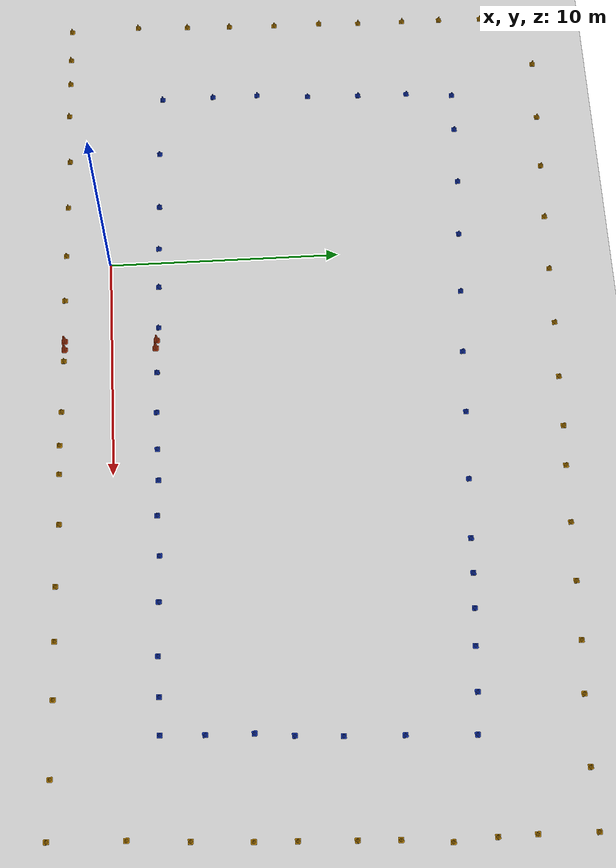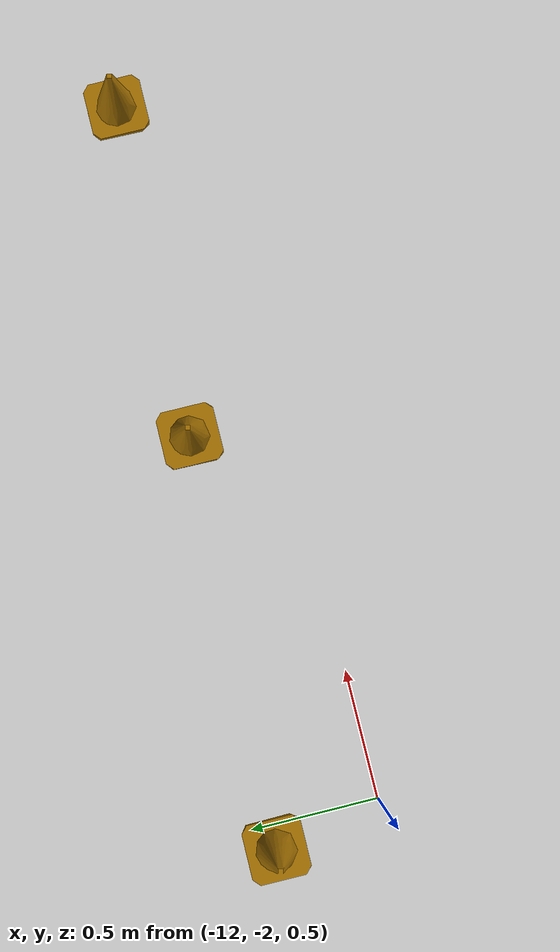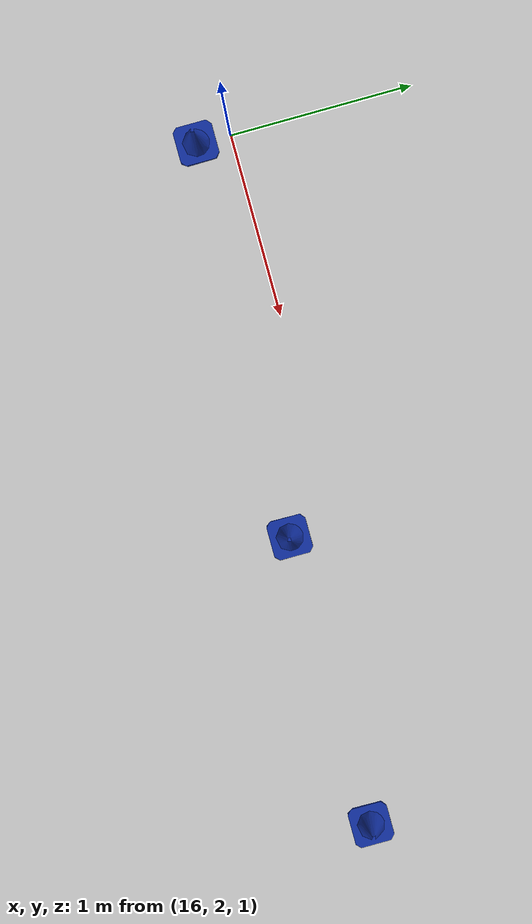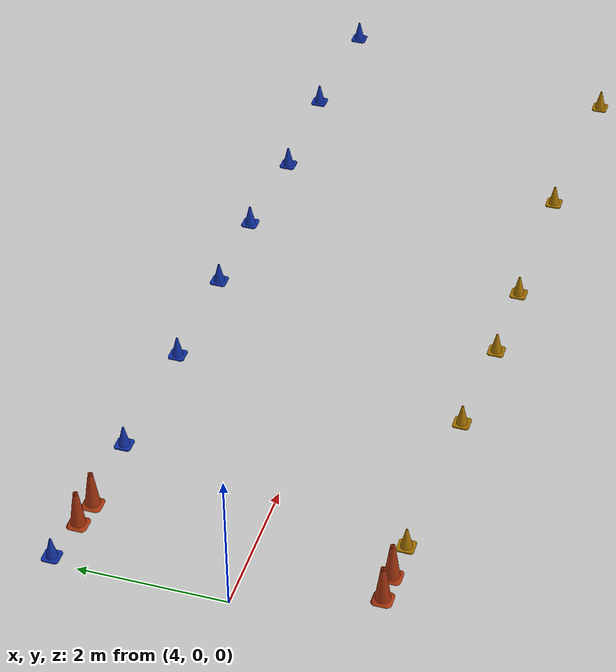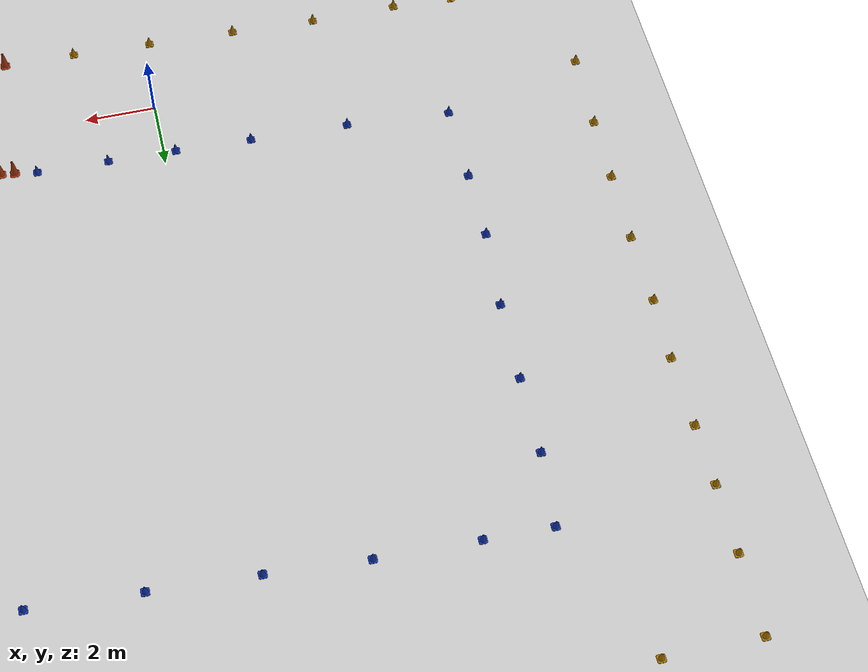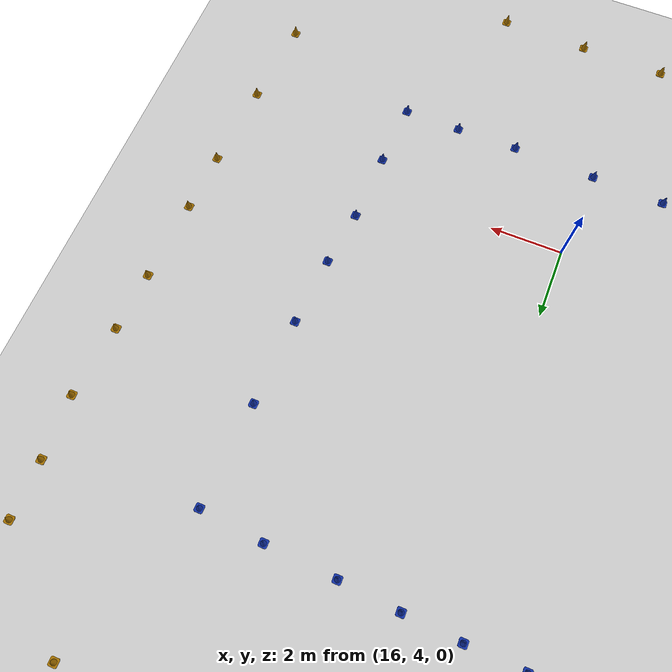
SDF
<sdf version='1.6'>
  <world name='rectangle'>
    <gui fullscreen='0'>
      <camera name='user_camera'>
        <pose frame=''>-40 40 20 0 0.667643 -1</pose>
        <view_controller>orbit</view_controller>
        <projection_type>perspective</projection_type>
      </camera>
    </gui>

    <!-- WORLD SETTINGS -->
    <scene>
      <ambient>1.0 1.0 1.0 1.0</ambient>
      <shadows>false</shadows>
    </scene>

    <spherical_coordinates>
      <heading_deg>180</heading_deg>

      <!-- Appleton Tower coordinates -->
      <latitude_deg>-27.69056</latitude_deg>
      <longitude_deg>152.65461</longitude_deg>
    </spherical_coordinates>

    <light name='sun' type='directional'>
      <cast_shadows>1</cast_shadows>
      <pose frame=''>0 0 10 0 -0 0</pose>
      <diffuse>0.8 0.8 0.8 1</diffuse>
      <specular>0.1 0.1 0.1 1</specular>
      <attenuation>
        <range>1000</range>
        <constant>0.9</constant>
        <linear>0.01</linear>
        <quadratic>0.001</quadratic>
      </attenuation>
      <direction>-0.5 0.5 -1</direction>
    </light>

    <!-- MODELS -->
    <include>
      <uri>model://ground_plane</uri>
      <pose>0.0 0.0 0.0 0 0 0</pose>
    </include>

    <include>
      <uri>model://rectangle</uri>
      <pose>0 0 0.5 0 0 0</pose>
    </include>

  </world>
</sdf>

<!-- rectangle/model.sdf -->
<sdf version='1.6'>
  <model name='track'>

    <include>
      <pose>5.6544677523948295 1.956587785484744 0.15 0 0 0</pose>
      <uri>model://blue_cone</uri>
      <name>blue_cone_0</name>

      <covariance x="0.000196" y="0.000196" xy="0.0"/>

    </include>

    <include>
      <pose>7.525817701700996 1.9079663772485465 0.15 0 0 0</pose>
      <uri>model://blue_cone</uri>
      <name>blue_cone_1</name>

      <covariance x="0.000196" y="0.000196" xy="0.0"/>

    </include>

    <include>
      <pose>9.21198625619503 1.9003050374653905 0.15 0 0 0</pose>
      <uri>model://blue_cone</uri>
      <name>blue_cone_2</name>

      <covariance x="0.000196" y="0.000196" xy="0.0"/>

    </include>

    <include>
      <pose>10.617088060135671 1.913222493246845 0.15 0 0 0</pose>
      <uri>model://blue_cone</uri>
      <name>blue_cone_3</name>

      <covariance x="0.000196" y="0.000196" xy="0.0"/>

    </include>

    <include>
      <pose>12.184920875310338 1.8323518996479609 0.15 0 0 0</pose>
      <uri>model://blue_cone</uri>
      <name>blue_cone_4</name>

      <covariance x="0.000196" y="0.000196" xy="0.0"/>

    </include>

    <include>
      <pose>13.947094834501923 1.8826497326155731 0.15 0 0 0</pose>
      <uri>model://blue_cone</uri>
      <name>blue_cone_5</name>

      <covariance x="0.000196" y="0.000196" xy="0.0"/>

    </include>

    <include>
      <pose>15.907212903585409 1.807003889790672 0.15 0 0 0</pose>
      <uri>model://blue_cone</uri>
      <name>blue_cone_6</name>

      <covariance x="0.000196" y="0.000196" xy="0.0"/>

    </include>

    <include>
      <pose>18.170708496990883 1.7257733434104747 0.15 0 0 0</pose>
      <uri>model://blue_cone</uri>
      <name>blue_cone_7</name>

      <covariance x="0.000196" y="0.000196" xy="0.0"/>

    </include>

    <include>
      <pose>19.84144160352861 1.7360355929489475 0.15 0 0 0</pose>
      <uri>model://blue_cone</uri>
      <name>blue_cone_8</name>

      <covariance x="0.000196" y="0.000196" xy="0.0"/>

    </include>

    <include>
      <pose>21.384094120388863 1.7230703824449007 0.15 0 0 0</pose>
      <uri>model://blue_cone</uri>
      <name>blue_cone_9</name>

      <covariance x="0.000196" y="0.000196" xy="0.0"/>

    </include>

    <include>
      <pose>21.509325371907494 5.422236654574587 0.15 0 0 0</pose>
      <uri>model://blue_cone</uri>
      <name>blue_cone_10</name>

      <covariance x="0.000196" y="0.000196" xy="0.0"/>

    </include>

    <include>
      <pose>21.68839458713218 6.984193992240153 0.15 0 0 0</pose>
      <uri>model://blue_cone</uri>
      <name>blue_cone_11</name>

      <covariance x="0.000196" y="0.000196" xy="0.0"/>

    </include>

    <include>
      <pose>21.807527693654627 8.889241096852942 0.15 0 0 0</pose>
      <uri>model://blue_cone</uri>
      <name>blue_cone_12</name>

      <covariance x="0.000196" y="0.000196" xy="0.0"/>

    </include>

    <include>
      <pose>21.901153531652877 11.29087340598122 0.15 0 0 0</pose>
      <uri>model://blue_cone</uri>
      <name>blue_cone_13</name>

      <covariance x="0.000196" y="0.000196" xy="0.0"/>

    </include>

    <include>
      <pose>22.03834409050067 14.10471292986273 0.15 0 0 0</pose>
      <uri>model://blue_cone</uri>
      <name>blue_cone_14</name>

      <covariance x="0.000196" y="0.000196" xy="0.0"/>

    </include>

    <include>
      <pose>20.32563900601358 14.261560834433398 0.15 0 0 0</pose>
      <uri>model://blue_cone</uri>
      <name>blue_cone_15</name>

      <covariance x="0.000196" y="0.000196" xy="0.0"/>

    </include>

    <include>
      <pose>18.447260568554672 14.352890306578011 0.15 0 0 0</pose>
      <uri>model://blue_cone</uri>
      <name>blue_cone_16</name>

      <covariance x="0.000196" y="0.000196" xy="0.0"/>

    </include>

    <include>
      <pose>16.865897946294062 14.463976210033453 0.15 0 0 0</pose>
      <uri>model://blue_cone</uri>
      <name>blue_cone_17</name>

      <covariance x="0.000196" y="0.000196" xy="0.0"/>

    </include>

    <include>
      <pose>15.369213145973408 14.541409632513096 0.15 0 0 0</pose>
      <uri>model://blue_cone</uri>
      <name>blue_cone_18</name>

      <covariance x="0.000196" y="0.000196" xy="0.0"/>

    </include>

    <include>
      <pose>13.870837450218747 14.58203862223499 0.15 0 0 0</pose>
      <uri>model://blue_cone</uri>
      <name>blue_cone_19</name>

      <covariance x="0.000196" y="0.000196" xy="0.0"/>

    </include>

    <include>
      <pose>11.258902569011518 14.735940379467888 0.15 0 0 0</pose>
      <uri>model://blue_cone</uri>
      <name>blue_cone_20</name>

      <covariance x="0.000196" y="0.000196" xy="0.0"/>

    </include>

    <include>
      <pose>8.206183192670238 14.888926659353276 0.15 0 0 0</pose>
      <uri>model://blue_cone</uri>
      <name>blue_cone_21</name>

      <covariance x="0.000196" y="0.000196" xy="0.0"/>

    </include>

    <include>
      <pose>5.384246617898095 15.002328737958663 0.15 0 0 0</pose>
      <uri>model://blue_cone</uri>
      <name>blue_cone_22</name>

      <covariance x="0.000196" y="0.000196" xy="0.0"/>

    </include>

    <include>
      <pose>2.47032931748818 15.172722670488898 0.15 0 0 0</pose>
      <uri>model://blue_cone</uri>
      <name>blue_cone_23</name>

      <covariance x="0.000196" y="0.000196" xy="0.0"/>

    </include>

    <include>
      <pose>-0.3674987281225539 15.340883870727527 0.15 0 0 0</pose>
      <uri>model://blue_cone</uri>
      <name>blue_cone_24</name>

      <covariance x="0.000196" y="0.000196" xy="0.0"/>

    </include>

    <include>
      <pose>-3.050931886039049 15.527652834938214 0.15 0 0 0</pose>
      <uri>model://blue_cone</uri>
      <name>blue_cone_25</name>

      <covariance x="0.000196" y="0.000196" xy="0.0"/>

    </include>

    <include>
      <pose>-5.783423687397845 15.610676658747948 0.15 0 0 0</pose>
      <uri>model://blue_cone</uri>
      <name>blue_cone_26</name>

      <covariance x="0.000196" y="0.000196" xy="0.0"/>

    </include>

    <include>
      <pose>-7.614621987631413 15.649977881367494 0.15 0 0 0</pose>
      <uri>model://blue_cone</uri>
      <name>blue_cone_27</name>

      <covariance x="0.000196" y="0.000196" xy="0.0"/>

    </include>

    <include>
      <pose>-7.799342834447888 13.589114571444677 0.15 0 0 0</pose>
      <uri>model://blue_cone</uri>
      <name>blue_cone_28</name>

      <covariance x="0.000196" y="0.000196" xy="0.0"/>

    </include>

    <include>
      <pose>-7.841127751370941 11.389636685416614 0.15 0 0 0</pose>
      <uri>model://blue_cone</uri>
      <name>blue_cone_29</name>

      <covariance x="0.000196" y="0.000196" xy="0.0"/>

    </include>

    <include>
      <pose>-7.913544349947951 9.09542920199291 0.15 0 0 0</pose>
      <uri>model://blue_cone</uri>
      <name>blue_cone_30</name>

      <covariance x="0.000196" y="0.000196" xy="0.0"/>

    </include>

    <include>
      <pose>-8.099408899209875 6.810534282196548 0.15 0 0 0</pose>
      <uri>model://blue_cone</uri>
      <name>blue_cone_31</name>

      <covariance x="0.000196" y="0.000196" xy="0.0"/>

    </include>

    <include>
      <pose>-8.111414334708572 4.793234068710441 0.15 0 0 0</pose>
      <uri>model://blue_cone</uri>
      <name>blue_cone_32</name>

      <covariance x="0.000196" y="0.000196" xy="0.0"/>

    </include>

    <include>
      <pose>-8.100235954391684 2.513922168418352 0.15 0 0 0</pose>
      <uri>model://blue_cone</uri>
      <name>blue_cone_33</name>

      <covariance x="0.000199625" y="0.000199625" xy="0.0"/>

    </include>

    <include>
      <pose>-5.2014451067354655 2.3120258595638803 0.15 0 0 0</pose>
      <uri>model://blue_cone</uri>
      <name>blue_cone_34</name>

      <covariance x="0.000196" y="0.000196" xy="0.0"/>

    </include>

    <include>
      <pose>-2.456646694020797 2.242589552401528 0.15 0 0 0</pose>
      <uri>model://blue_cone</uri>
      <name>blue_cone_35</name>

      <covariance x="0.000196" y="0.000196" xy="0.0"/>

    </include>

    <include>
      <pose>-0.3381635956528349 2.1710165467856184 0.15 0 0 0</pose>
      <uri>model://blue_cone</uri>
      <name>blue_cone_36</name>

      <covariance x="0.000196" y="0.000196" xy="0.0"/>

    </include>

    <include>
      <pose>1.551332171321524 2.125148974294841 0.15 0 0 0</pose>
      <uri>model://blue_cone</uri>
      <name>blue_cone_37</name>

      <covariance x="0.000196" y="0.000196" xy="0.0"/>

    </include>

    <include>
      <pose>3.5302424217577424 2.0740016545628213 0.15 0 0 0</pose>
      <uri>model://blue_cone</uri>
      <name>blue_cone_38</name>

      <covariance x="0.000196" y="0.000196" xy="0.0"/>

    </include>

    <include>
      <pose>21.465203774251236 3.496025210458989 0.15 0 0 0</pose>
      <uri>model://blue_cone</uri>
      <name>blue_cone_39</name>

      <covariance x="0.000196" y="0.000196" xy="0.0"/>

    </include>

    <include>
      <pose>25.29004915888486 -2.6837811005261165 0.15 0 0 0</pose>
      <uri>model://yellow_cone</uri>
      <name>yellow_cone_40</name>

      <covariance x="0.000196" y="0.000196" xy="0.0"/>

    </include>

    <include>
      <pose>25.40526626213012 0.3676387964801947 0.15 0 0 0</pose>
      <uri>model://yellow_cone</uri>
      <name>yellow_cone_41</name>

      <covariance x="0.000196" y="0.000196" xy="0.0"/>

    </include>

    <include>
      <pose>25.57684085896673 2.8119832119883807 0.15 0 0 0</pose>
      <uri>model://yellow_cone</uri>
      <name>yellow_cone_42</name>

      <covariance x="0.000196" y="0.000196" xy="0.0"/>

    </include>

    <include>
      <pose>25.720399777807145 5.214438545950131 0.15 0 0 0</pose>
      <uri>model://yellow_cone</uri>
      <name>yellow_cone_43</name>

      <covariance x="0.000196" y="0.000196" xy="0.0"/>

    </include>

    <include>
      <pose>25.780150728867905 6.890998303222274 0.15 0 0 0</pose>
      <uri>model://yellow_cone</uri>
      <name>yellow_cone_44</name>

      <covariance x="0.000196" y="0.000196" xy="0.0"/>

    </include>

    <include>
      <pose>25.880509420221067 9.15982048276956 0.15 0 0 0</pose>
      <uri>model://yellow_cone</uri>
      <name>yellow_cone_45</name>

      <covariance x="0.000196" y="0.000196" xy="0.0"/>

    </include>

    <include>
      <pose>25.95560291638632 10.815835636640204 0.15 0 0 0</pose>
      <uri>model://yellow_cone</uri>
      <name>yellow_cone_46</name>

      <covariance x="0.000196" y="0.000196" xy="0.0"/>

    </include>

    <include>
      <pose>26.14210055168686 12.802677675140716 0.15 0 0 0</pose>
      <uri>model://yellow_cone</uri>
      <name>yellow_cone_47</name>

      <covariance x="0.000196" y="0.000196" xy="0.0"/>

    </include>

    <include>
      <pose>26.03902072531154 14.509860567359892 0.15 0 0 0</pose>
      <uri>model://yellow_cone</uri>
      <name>yellow_cone_48</name>

      <covariance x="0.000196" y="0.000196" xy="0.0"/>

    </include>

    <include>
      <pose>26.02237551755659 16.04267670055701 0.15 0 0 0</pose>
      <uri>model://yellow_cone</uri>
      <name>yellow_cone_49</name>

      <covariance x="0.000196" y="0.000196" xy="0.0"/>

    </include>

    <include>
      <pose>26.062326869929127 18.391584849547705 0.15 0 0 0</pose>
      <uri>model://yellow_cone</uri>
      <name>yellow_cone_50</name>

      <covariance x="0.000196" y="0.000196" xy="0.0"/>

    </include>

    <include>
      <pose>23.547511179168527 18.353935813272564 0.15 0 0 0</pose>
      <uri>model://yellow_cone</uri>
      <name>yellow_cone_51</name>

      <covariance x="0.000196" y="0.000196" xy="0.0"/>

    </include>

    <include>
      <pose>20.634066277581937 18.442489924615195 0.15 0 0 0</pose>
      <uri>model://yellow_cone</uri>
      <name>yellow_cone_52</name>

      <covariance x="0.000196" y="0.000196" xy="0.0"/>

    </include>

    <include>
      <pose>18.435714595105736 18.59094606937326 0.15 0 0 0</pose>
      <uri>model://yellow_cone</uri>
      <name>yellow_cone_53</name>

      <covariance x="0.000196" y="0.000196" xy="0.0"/>

    </include>

    <include>
      <pose>15.933273212506252 18.66685405509625 0.15 0 0 0</pose>
      <uri>model://yellow_cone</uri>
      <name>yellow_cone_54</name>

      <covariance x="0.000196" y="0.000196" xy="0.0"/>

    </include>

    <include>
      <pose>13.397897642719496 18.73457497430684 0.15 0 0 0</pose>
      <uri>model://yellow_cone</uri>
      <name>yellow_cone_55</name>

      <covariance x="0.000196" y="0.000196" xy="0.0"/>

    </include>

    <include>
      <pose>10.87257662737077 18.81631416638646 0.15 0 0 0</pose>
      <uri>model://yellow_cone</uri>
      <name>yellow_cone_56</name>

      <covariance x="0.000196" y="0.000196" xy="0.0"/>

    </include>

    <include>
      <pose>9.06685968234122 18.91196843591013 0.15 0 0 0</pose>
      <uri>model://yellow_cone</uri>
      <name>yellow_cone_57</name>

      <covariance x="0.000196" y="0.000196" xy="0.0"/>

    </include>

    <include>
      <pose>6.787904838396326 18.96920239854633 0.15 0 0 0</pose>
      <uri>model://yellow_cone</uri>
      <name>yellow_cone_58</name>

      <covariance x="0.000196" y="0.000196" xy="0.0"/>

    </include>

    <include>
      <pose>4.205548328122291 19.06866328669447 0.15 0 0 0</pose>
      <uri>model://yellow_cone</uri>
      <name>yellow_cone_59</name>

      <covariance x="0.000196" y="0.000196" xy="0.0"/>

    </include>

    <include>
      <pose>1.5706546416900624 19.120567280227444 0.15 0 0 0</pose>
      <uri>model://yellow_cone</uri>
      <name>yellow_cone_60</name>

      <covariance x="0.000196" y="0.000196" xy="0.0"/>

    </include>

    <include>
      <pose>-1.0396935459420096 19.191296529328547 0.15 0 0 0</pose>
      <uri>model://yellow_cone</uri>
      <name>yellow_cone_61</name>

      <covariance x="0.000196" y="0.000196" xy="0.0"/>

    </include>

    <include>
      <pose>-3.66279792819121 19.30734173424037 0.15 0 0 0</pose>
      <uri>model://yellow_cone</uri>
      <name>yellow_cone_62</name>

      <covariance x="0.000196" y="0.000196" xy="0.0"/>

    </include>

    <include>
      <pose>-6.239464017373246 19.39939687015348 0.15 0 0 0</pose>
      <uri>model://yellow_cone</uri>
      <name>yellow_cone_63</name>

      <covariance x="0.000196" y="0.000196" xy="0.0"/>

    </include>

    <include>
      <pose>-9.12647758419994 19.49418028904743 0.15 0 0 0</pose>
      <uri>model://yellow_cone</uri>
      <name>yellow_cone_64</name>

      <covariance x="0.000196" y="0.000196" xy="0.0"/>

    </include>

    <include>
      <pose>-11.702436682329513 19.50059002599909 0.15 0 0 0</pose>
      <uri>model://yellow_cone</uri>
      <name>yellow_cone_65</name>

      <covariance x="0.000196" y="0.000196" xy="0.0"/>

    </include>

    <include>
      <pose>-11.763550481542056 17.310729394102474 0.15 0 0 0</pose>
      <uri>model://yellow_cone</uri>
      <name>yellow_cone_66</name>

      <covariance x="0.000196" y="0.000196" xy="0.0"/>

    </include>

    <include>
      <pose>-11.805144639596852 15.406413445745208 0.15 0 0 0</pose>
      <uri>model://yellow_cone</uri>
      <name>yellow_cone_67</name>

      <covariance x="0.000196" y="0.000196" xy="0.0"/>

    </include>

    <include>
      <pose>-11.812702375288328 13.690935521263556 0.15 0 0 0</pose>
      <uri>model://yellow_cone</uri>
      <name>yellow_cone_68</name>

      <covariance x="0.000196" y="0.000196" xy="0.0"/>

    </include>

    <include>
      <pose>-11.823166305009575 11.653783870975698 0.15 0 0 0</pose>
      <uri>model://yellow_cone</uri>
      <name>yellow_cone_69</name>

      <covariance x="0.000196" y="0.000196" xy="0.0"/>

    </include>

    <include>
      <pose>-11.902141853912024 9.841477137102586 0.15 0 0 0</pose>
      <uri>model://yellow_cone</uri>
      <name>yellow_cone_70</name>

      <covariance x="0.000196" y="0.000196" xy="0.0"/>

    </include>

    <include>
      <pose>-11.904639593015748 7.767439167765682 0.15 0 0 0</pose>
      <uri>model://yellow_cone</uri>
      <name>yellow_cone_71</name>

      <covariance x="0.000196" y="0.000196" xy="0.0"/>

    </include>

    <include>
      <pose>-11.96447903893579 5.687158804984969 0.15 0 0 0</pose>
      <uri>model://yellow_cone</uri>
      <name>yellow_cone_72</name>

      <covariance x="0.000196" y="0.000196" xy="0.0"/>

    </include>

    <include>
      <pose>-12.026330388700575 3.7448067961646094 0.15 0 0 0</pose>
      <uri>model://yellow_cone</uri>
      <name>yellow_cone_73</name>

      <covariance x="0.000196" y="0.000196" xy="0.0"/>

    </include>

    <include>
      <pose>-12.12824322731219 1.4721366115507153 0.15 0 0 0</pose>
      <uri>model://yellow_cone</uri>
      <name>yellow_cone_74</name>

      <covariance x="0.000196" y="0.000196" xy="0.0"/>

    </include>

    <include>
      <pose>-12.05171595564297 -1.5776989698260424 0.15 0 0 0</pose>
      <uri>model://yellow_cone</uri>
      <name>yellow_cone_75</name>

      <covariance x="0.000196" y="0.000196" xy="0.0"/>

    </include>

    <include>
      <pose>-10.486361741845522 -1.6294321287105042 0.15 0 0 0</pose>
      <uri>model://yellow_cone</uri>
      <name>yellow_cone_76</name>

      <covariance x="0.000196" y="0.000196" xy="0.0"/>

    </include>

    <include>
      <pose>-9.172715433746644 -1.656257110450661 0.15 0 0 0</pose>
      <uri>model://yellow_cone</uri>
      <name>yellow_cone_77</name>

      <covariance x="0.000196" y="0.000196" xy="0.0"/>

    </include>

    <include>
      <pose>-7.44508561666108 -1.7275419884812404 0.15 0 0 0</pose>
      <uri>model://yellow_cone</uri>
      <name>yellow_cone_78</name>

      <covariance x="0.000196" y="0.000196" xy="0.0"/>

    </include>

    <include>
      <pose>-5.015557856411516 -1.6957615416056977 0.15 0 0 0</pose>
      <uri>model://yellow_cone</uri>
      <name>yellow_cone_79</name>

      <covariance x="0.000196" y="0.000196" xy="0.0"/>

    </include>

    <include>
      <pose>-2.640081834617275 -1.7859953401349886 0.15 0 0 0</pose>
      <uri>model://yellow_cone</uri>
      <name>yellow_cone_80</name>

      <covariance x="0.000196" y="0.000196" xy="0.0"/>

    </include>

    <include>
      <pose>-0.1969670233979776 -1.8602811637288488 0.15 0 0 0</pose>
      <uri>model://yellow_cone</uri>
      <name>yellow_cone_81</name>

      <covariance x="0.000196" y="0.000196" xy="0.0"/>

    </include>

    <include>
      <pose>2.0036417036355134 -1.9360540038207863 0.15 0 0 0</pose>
      <uri>model://yellow_cone</uri>
      <name>yellow_cone_82</name>

      <covariance x="0.000196" y="0.000196" xy="0.0"/>

    </include>

    <include>
      <pose>4.911471140398143 -1.989355009533528 0.15 0 0 0</pose>
      <uri>model://yellow_cone</uri>
      <name>yellow_cone_83</name>

      <covariance x="0.000196" y="0.000196" xy="0.0"/>

    </include>

    <include>
      <pose>7.281991003884945 -2.0864660911339774 0.15 0 0 0</pose>
      <uri>model://yellow_cone</uri>
      <name>yellow_cone_84</name>

      <covariance x="0.000196" y="0.000196" xy="0.0"/>

    </include>

    <include>
      <pose>8.82391149638571 -2.175652420465703 0.15 0 0 0</pose>
      <uri>model://yellow_cone</uri>
      <name>yellow_cone_85</name>

      <covariance x="0.000196" y="0.000196" xy="0.0"/>

    </include>

    <include>
      <pose>10.117598863373685 -2.185396819158344 0.15 0 0 0</pose>
      <uri>model://yellow_cone</uri>
      <name>yellow_cone_86</name>

      <covariance x="0.000196" y="0.000196" xy="0.0"/>

    </include>

    <include>
      <pose>12.35475201077751 -2.200077719257381 0.15 0 0 0</pose>
      <uri>model://yellow_cone</uri>
      <name>yellow_cone_87</name>

      <covariance x="0.000196" y="0.000196" xy="0.0"/>

    </include>

    <include>
      <pose>15.03214071874365 -2.348025129792972 0.15 0 0 0</pose>
      <uri>model://yellow_cone</uri>
      <name>yellow_cone_88</name>

      <covariance x="0.000196" y="0.000196" xy="0.0"/>

    </include>

    <include>
      <pose>17.34287731398159 -2.383985369794416 0.15 0 0 0</pose>
      <uri>model://yellow_cone</uri>
      <name>yellow_cone_89</name>

      <covariance x="0.000196" y="0.000196" xy="0.0"/>

    </include>

    <include>
      <pose>19.73284031060333 -2.4385486426912077 0.15 0 0 0</pose>
      <uri>model://yellow_cone</uri>
      <name>yellow_cone_90</name>

      <covariance x="0.000196" y="0.000196" xy="0.0"/>

    </include>

    <include>
      <pose>22.898026298161675 -2.5503542047613967 0.15 0 0 0</pose>
      <uri>model://yellow_cone</uri>
      <name>yellow_cone_91</name>

      <covariance x="0.000196" y="0.000196" xy="0.0"/>

    </include>

    <include>
      <pose>3.9873662152554776 -1.951726233347375 0.15 0 0 0</pose>
      <uri>model://big_cone</uri>
      <name>big_cone_92</name>

      <covariance x="0.000196" y="0.000196" xy="0.0"/>

    </include>

    <include>
      <pose>4.37589988554224 -1.956875023035394 0.15 0 0 0</pose>
      <uri>model://big_cone</uri>
      <name>big_cone_93</name>

      <covariance x="0.000196" y="0.000196" xy="0.0"/>

    </include>

    <include>
      <pose>4.141769643193719 1.9764105112368184 0.15 0 0 0</pose>
      <uri>model://big_cone</uri>
      <name>big_cone_94</name>

      <covariance x="0.000196" y="0.000196" xy="0.0"/>

    </include>

    <include>
      <pose>4.514286209680698 1.9321907451459517 0.15 0 0 0</pose>
      <uri>model://big_cone</uri>
      <name>big_cone_95</name>

      <covariance x="0.000196" y="0.000196" xy="0.0"/>

    </include>

    <static>0</static>
    <allow_auto_disable>1</allow_auto_disable>
  </model>
</sdf>

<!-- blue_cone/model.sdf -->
<sdf version='1.6'>
  <model name='blue_cone'>
    <link name='link'>
      <pose frame=''>0 0 0 0 0 0</pose>
      <inertial>
        <inertia>
          <ixx>0.0016</ixx>
          <ixy>0</ixy>
          <ixz>0</ixz>
          <iyy>0.0016</iyy>
          <iyz>0</iyz>
          <izz>0.0010</izz>
        </inertia>
        <mass>0.45</mass>
      </inertial>
      <visual name='visual'>
        <geometry>
          <mesh>
            <uri>model://cone_blue.dae</uri>
          </mesh>
        </geometry>
        <cast_shadows>1</cast_shadows>
      </visual>
      <collision name='collision'>
        <max_contacts>3</max_contacts>
        <geometry>
          <mesh>
            <uri>model://cone_blue.dae</uri>
          </mesh>
        </geometry>
      </collision>
    </link>
  </model>
</sdf>

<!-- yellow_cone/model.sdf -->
<sdf version='1.6'>
  <model name='yellow_cone'>
    <link name='link'>
      <pose frame=''>0 0 0 0 0 0</pose>
      <inertial>
        <inertia>
          <ixx>0.0016</ixx>
          <ixy>0</ixy>
          <ixz>0</ixz>
          <iyy>0.0016</iyy>
          <iyz>0</iyz>
          <izz>0.0010</izz>
        </inertia>
        <mass>0.45</mass>
      </inertial>
      <visual name='visual'>
        <geometry>
          <mesh>
            <uri>model://cone_yellow.dae</uri>
          </mesh>
        </geometry>
        <cast_shadows>1</cast_shadows>
      </visual>
      <collision name='collision'>
        <max_contacts>3</max_contacts>
        <geometry>
          <mesh>
            <uri>model://cone_yellow.dae</uri>
          </mesh>
        </geometry>
      </collision>
    </link>
  </model>
</sdf>

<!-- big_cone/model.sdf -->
<sdf version='1.6'>
  <model name='big_cone'>
    <link name='link'>
      <pose frame=''>0 0 0 0 0 0</pose>
      <inertial>
        <inertia>
          <ixx>0.0016</ixx>
          <ixy>0</ixy>
          <ixz>0</ixz>
          <iyy>0.0016</iyy>
          <iyz>0</iyz>
          <izz>0.0010</izz>
        </inertia>
        <mass>0.45</mass>
      </inertial>
      <visual name='visual'>
        <geometry>
          <mesh>
            <uri>model://cone_big.dae</uri>
          </mesh>
        </geometry>
        <cast_shadows>1</cast_shadows>
      </visual>
      <collision name='collision'>
        <max_contacts>3</max_contacts>
        <geometry>
          <mesh>
            <uri>model://cone_big.dae</uri>
          </mesh>
        </geometry>
      </collision>
    </link>
  </model>
</sdf>
